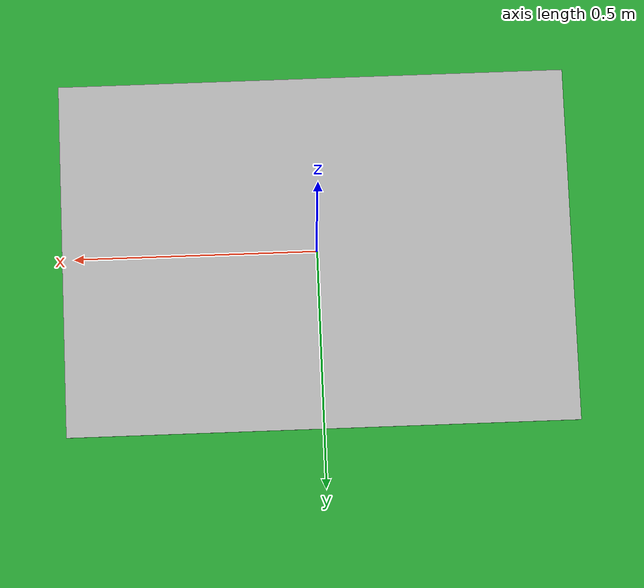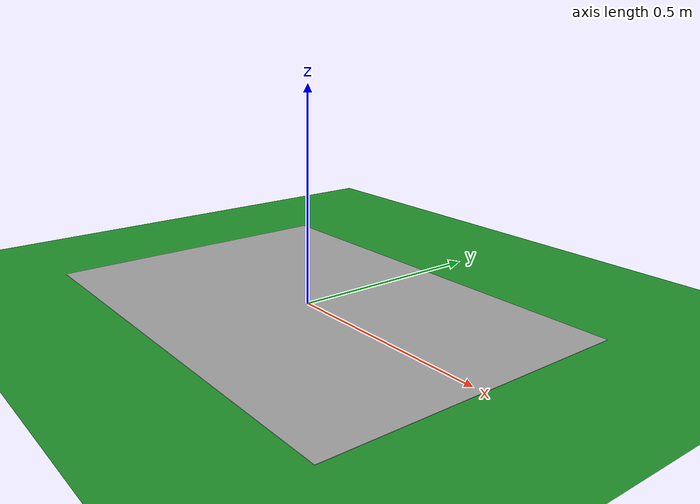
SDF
<sdf version="1.6">
 <world name="default">
  <light name="sun" type="directional">
   <pose>0 0 10 0 -0 0</pose>
   <diffuse>0.8 0.8 0.8 1</diffuse>
   <specular>0.2 0.2 0.2 1</specular>
   <attenuation>
    <range>1000</range>
    <constant>0.9</constant>
    <linear>0.01</linear>
    <quadratic>0.001</quadratic>
   </attenuation>
   <direction>-0.5 0.1 -0.9</direction>
  </light>
  <model name="ground_plane">
   <static>1</static>
   <link name="link">
    <collision name="collision">
     <geometry><plane><normal>0 0 1</normal><size>100 100</size></plane></geometry>
     <surface><friction><ode><mu>100</mu><mu2>50</mu2></ode></friction></surface>
    </collision>
    <visual name="visual">
     <cast_shadows>0</cast_shadows>
     <geometry><plane><normal>0 0 1</normal><size>100 100</size></plane></geometry>
     <material>
      <script><uri>file://media/materials/scripts/gazebo.material</uri><name>Gazebo/Green</name></script>
     </material>
    </visual>
   </link>
  </model>
  <include><uri>model://psi_logo</uri></include>
  <gravity>0 0 -9.8</gravity>
  <magnetic_field>6e-06 2.3e-05 -4.2e-05</magnetic_field>
  <atmosphere type="adiabatic"/>
  <physics name="default_physics" default="0" type="ode">
   <max_step_size>0.001</max_step_size>
   <real_time_factor>1</real_time_factor>
   <real_time_update_rate>1000</real_time_update_rate>
  </physics>
  <scene><ambient>0.4 0.4 0.4 1</ambient><background>0.7 0.7 0.7 1</background><shadows>1</shadows></scene>
  <spherical_coordinates>
   <surface_model>EARTH_WGS84</surface_model>
   <latitude_deg>0</latitude_deg>
   <longitude_deg>0</longitude_deg>
   <elevation>0</elevation>
   <heading_deg>0</heading_deg>
  </spherical_coordinates>
 </world>
</sdf>

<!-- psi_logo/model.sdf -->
<sdf version='1.6'>
  <model name='psi_logo'>
    <link name='main'>
    <pose frame=''>0 0 0 0 0 0</pose>
      <visual name='main_Visual'>
        <geometry>
          <box>
            <size>1.05 0.75 0.001</size>
            <!-- inner logo dim: -->
          </box>
        </geometry>
           <material>
          <script>
            <uri>model://psi_logo/materials/scripts</uri>
            <uri>model://psi_logo/materials/textures</uri>
            <name>psi_logo</name>
          </script>
        </material>
      </visual>
     </link>
    <static>1</static>
  </model>
</sdf>
